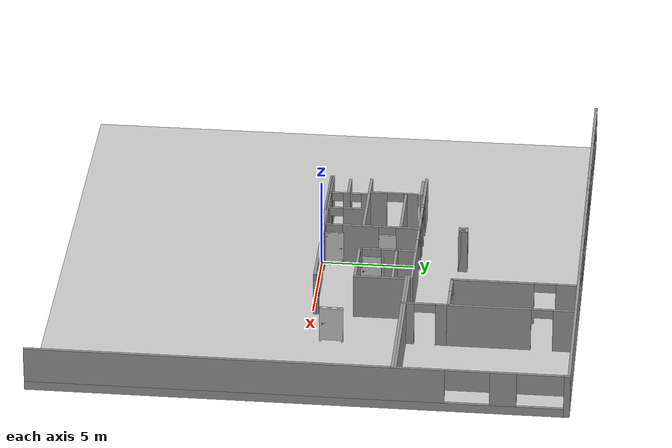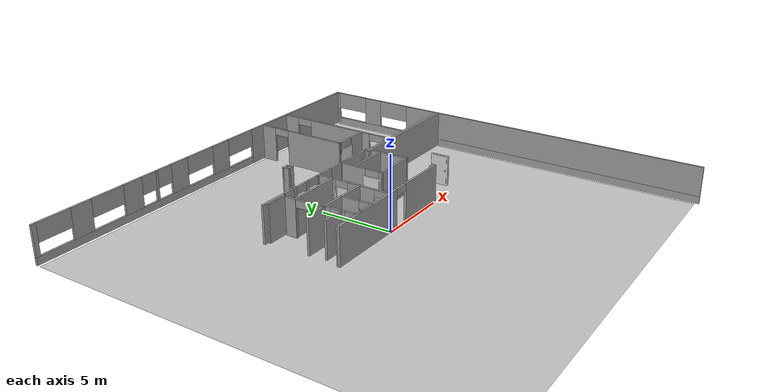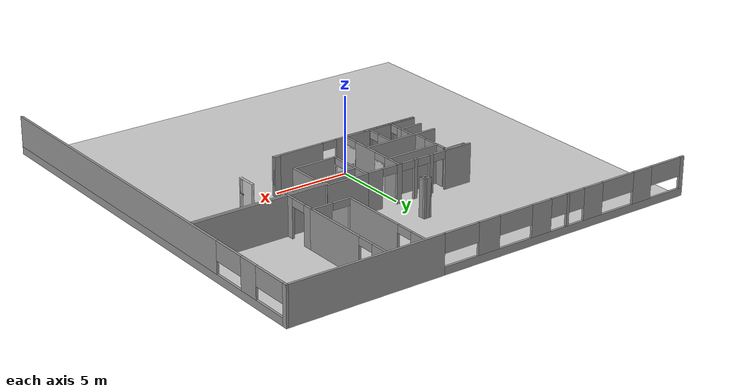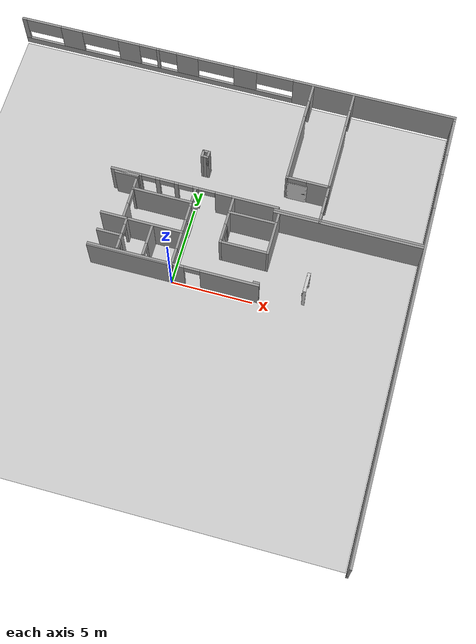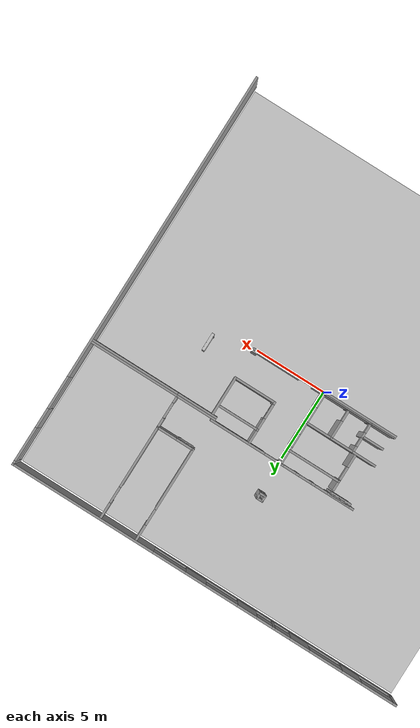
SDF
<sdf version="1.6">
 <world name="default">
  <model name="my_ground_plane">
   <static>1</static>
   <link name="link">
    <collision name="collision">
     <geometry><plane><normal>0 0 1</normal><size>100 100</size></plane></geometry>
     <surface><friction><ode><mu>100</mu><mu2>50</mu2></ode></friction></surface>
    </collision>
    <visual name="visual">
     <cast_shadows>0</cast_shadows>
     <geometry><plane><normal>0 0 1</normal><size>28 28</size></plane></geometry>
     <material>
      <script>
       <uri>model://my_ground_plane/materials/scripts</uri>
       <uri>model://my_ground_plane/materials/textures</uri>
       <name>MyGroundPlane/Image</name>
      </script>
     </material>
    </visual>
   </link>
  </model>
  <model name="basement">
   <link name="Wall_108">
    <pose>2.7255 0.139626 0 0 -0 0</pose>
    <visual name="Wall_108_Visual_0">
     <pose>-2.26972 0 1.25 0 -0 0</pose>
     <geometry><box><size>0.710554 0.15 2.5</size></box></geometry>
     <material>
      <script><uri>file://media/materials/scripts/gazebo.material</uri><name>Gazebo/Grey</name></script>
      <ambient>1 1 1 1</ambient>
     </material>
    </visual>
    <collision name="Wall_108_Collision_0">
     <geometry><box><size>0.710554 0.15 2.5</size></box></geometry>
     <pose>-2.26972 0 1.25 0 -0 0</pose>
    </collision>
    <visual name="Wall_108_Visual_1">
     <pose>0.840079 0 1.25 0 -0 0</pose>
     <geometry><box><size>3.56984 0.15 2.5</size></box></geometry>
     <material>
      <script><uri>file://media/materials/scripts/gazebo.material</uri><name>Gazebo/Grey</name></script>
      <ambient>1 1 1 1</ambient>
     </material>
    </visual>
    <collision name="Wall_108_Collision_1">
     <geometry><box><size>3.56984 0.15 2.5</size></box></geometry>
     <pose>0.840079 0 1.25 0 -0 0</pose>
    </collision>
    <visual name="Wall_108_Visual_2">
     <pose>-1.42964 0 2.25 0 -0 0</pose>
     <geometry><box><size>0.969605 0.15 0.5</size></box></geometry>
     <material>
      <script><uri>file://media/materials/scripts/gazebo.material</uri><name>Gazebo/Grey</name></script>
      <ambient>1 1 1 1</ambient>
     </material>
    </visual>
    <collision name="Wall_108_Collision_2">
     <geometry><box><size>0.969605 0.15 0.5</size></box></geometry>
     <pose>-1.42964 0 2.25 0 -0 0</pose>
    </collision>
   </link>
   <link name="Wall_116">
    <collision name="Wall_116_Collision">
     <geometry><box><size>0.4 0.15 2.5</size></box></geometry>
     <pose>0 0 1.25 0 -0 0</pose>
    </collision>
    <visual name="Wall_116_Visual">
     <pose>0 0 1.25 0 -0 0</pose>
     <geometry><box><size>0.4 0.15 2.5</size></box></geometry>
     <material>
      <script><uri>file://media/materials/scripts/gazebo.material</uri><name>Gazebo/Grey</name></script>
      <ambient>1 1 1 1</ambient>
     </material>
    </visual>
    <pose>5.13257 0.268093 0 0 -0 0</pose>
   </link>
   <link name="Wall_148">
    <collision name="Wall_148_Collision">
     <geometry><box><size>1.5 0.15 2.5</size></box></geometry>
     <pose>0 0 1.25 0 -0 0</pose>
    </collision>
    <visual name="Wall_148_Visual">
     <pose>0 0 1.25 0 -0 0</pose>
     <geometry><box><size>1.5 0.15 2.5</size></box></geometry>
     <material>
      <script><uri>file://media/materials/scripts/gazebo.material</uri><name>Gazebo/Grey</name></script>
      <ambient>1 1 1 1</ambient>
     </material>
    </visual>
    <pose>-4.23612 5.13065 0 0 -0 0</pose>
   </link>
   <link name="Wall_150">
    <collision name="Wall_150_Collision">
     <geometry><box><size>1.5 0.15 2.5</size></box></geometry>
     <pose>0 0 1.25 0 -0 0</pose>
    </collision>
    <visual name="Wall_150_Visual">
     <pose>0 0 1.25 0 -0 0</pose>
     <geometry><box><size>1.5 0.15 2.5</size></box></geometry>
     <material>
      <script><uri>file://media/materials/scripts/gazebo.material</uri><name>Gazebo/Grey</name></script>
      <ambient>1 1 1 1</ambient>
     </material>
    </visual>
    <pose>-4.23669 5.20302 0 0 -0 0</pose>
   </link>
   <link name="Wall_152">
    <collision name="Wall_152_Collision">
     <geometry><box><size>5.25 0.15 2.5</size></box></geometry>
     <pose>0 0 1.25 0 -0 0</pose>
    </collision>
    <visual name="Wall_152_Visual">
     <pose>0 0 1.25 0 -0 0</pose>
     <geometry><box><size>5.25 0.15 2.5</size></box></geometry>
     <material>
      <script><uri>file://media/materials/scripts/gazebo.material</uri><name>Gazebo/Grey</name></script>
      <ambient>1 1 1 1</ambient>
     </material>
    </visual>
    <pose>-2.49774 0.066434 0 0 -0 0</pose>
   </link>
   <link name="Wall_33">
    <pose>-0.0257 5.29795 0 0 -0 0</pose>
    <visual name="Wall_33_Visual_0">
     <pose>-4.2845 0 1.25 0 -0 0</pose>
     <geometry><box><size>1.93101 0.15 2.5</size></box></geometry>
     <material>
      <script><uri>file://media/materials/scripts/gazebo.material</uri><name>Gazebo/Grey</name></script>
      <ambient>1 1 1 1</ambient>
     </material>
    </visual>
    <collision name="Wall_33_Collision_0">
     <geometry><box><size>1.93101 0.15 2.5</size></box></geometry>
     <pose>-4.2845 0 1.25 0 -0 0</pose>
    </collision>
    <visual name="Wall_33_Visual_1">
     <pose>-2.30166 0 1.25 0 -0 0</pose>
     <geometry><box><size>0.26897 0.15 2.5</size></box></geometry>
     <material>
      <script><uri>file://media/materials/scripts/gazebo.material</uri><name>Gazebo/Grey</name></script>
      <ambient>1 1 1 1</ambient>
     </material>
    </visual>
    <collision name="Wall_33_Collision_1">
     <geometry><box><size>0.26897 0.15 2.5</size></box></geometry>
     <pose>-2.30166 0 1.25 0 -0 0</pose>
    </collision>
    <visual name="Wall_33_Visual_2">
     <pose>-1.1397 0 1.25 0 -0 0</pose>
     <geometry><box><size>0.254942 0.15 2.5</size></box></geometry>
     <material>
      <script><uri>file://media/materials/scripts/gazebo.material</uri><name>Gazebo/Grey</name></script>
      <ambient>1 1 1 1</ambient>
     </material>
    </visual>
    <collision name="Wall_33_Collision_2">
     <geometry><box><size>0.254942 0.15 2.5</size></box></geometry>
     <pose>-1.1397 0 1.25 0 -0 0</pose>
    </collision>
    <visual name="Wall_33_Visual_3">
     <pose>0.071064 0 1.25 0 -0 0</pose>
     <geometry><box><size>0.366595 0.15 2.5</size></box></geometry>
     <material>
      <script><uri>file://media/materials/scripts/gazebo.material</uri><name>Gazebo/Grey</name></script>
      <ambient>1 1 1 1</ambient>
     </material>
    </visual>
    <collision name="Wall_33_Collision_3">
     <geometry><box><size>0.366595 0.15 2.5</size></box></geometry>
     <pose>0.071064 0 1.25 0 -0 0</pose>
    </collision>
    <visual name="Wall_33_Visual_4">
     <pose>3.26793 0 1.25 0 -0 0</pose>
     <geometry><box><size>3.96414 0.15 2.5</size></box></geometry>
     <material>
      <script><uri>file://media/materials/scripts/gazebo.material</uri><name>Gazebo/Grey</name></script>
      <ambient>1 1 1 1</ambient>
     </material>
    </visual>
    <collision name="Wall_33_Collision_4">
     <geometry><box><size>3.96414 0.15 2.5</size></box></geometry>
     <pose>3.26793 0 1.25 0 -0 0</pose>
    </collision>
    <visual name="Wall_33_Visual_5">
     <pose>3.78189 0 1.25 0 -0 0</pose>
     <geometry><box><size>2.93622 0.15 2.5</size></box></geometry>
     <material>
      <script><uri>file://media/materials/scripts/gazebo.material</uri><name>Gazebo/Grey</name></script>
      <ambient>1 1 1 1</ambient>
     </material>
    </visual>
    <collision name="Wall_33_Collision_5">
     <geometry><box><size>2.93622 0.15 2.5</size></box></geometry>
     <pose>3.78189 0 1.25 0 -0 0</pose>
    </collision>
    <visual name="Wall_33_Visual_6">
     <pose>-2.87757 0 2.25 0 -0 0</pose>
     <geometry><box><size>0.882847 0.15 0.5</size></box></geometry>
     <material>
      <script><uri>file://media/materials/scripts/gazebo.material</uri><name>Gazebo/Grey</name></script>
      <ambient>1 1 1 1</ambient>
     </material>
    </visual>
    <collision name="Wall_33_Collision_6">
     <geometry><box><size>0.882847 0.15 0.5</size></box></geometry>
     <pose>-2.87757 0 2.25 0 -0 0</pose>
    </collision>
    <visual name="Wall_33_Visual_7">
     <pose>-1.71717 0 2.25 0 -0 0</pose>
     <geometry><box><size>0.9 0.15 0.5</size></box></geometry>
     <material>
      <script><uri>file://media/materials/scripts/gazebo.material</uri><name>Gazebo/Grey</name></script>
      <ambient>1 1 1 1</ambient>
     </material>
    </visual>
    <collision name="Wall_33_Collision_7">
     <geometry><box><size>0.9 0.15 0.5</size></box></geometry>
     <pose>-1.71717 0 2.25 0 -0 0</pose>
    </collision>
    <visual name="Wall_33_Visual_8">
     <pose>-0.562234 0 2.25 0 -0 0</pose>
     <geometry><box><size>0.9 0.15 0.5</size></box></geometry>
     <material>
      <script><uri>file://media/materials/scripts/gazebo.material</uri><name>Gazebo/Grey</name></script>
      <ambient>1 1 1 1</ambient>
     </material>
    </visual>
    <collision name="Wall_33_Collision_8">
     <geometry><box><size>0.9 0.15 0.5</size></box></geometry>
     <pose>-0.562234 0 2.25 0 -0 0</pose>
    </collision>
    <visual name="Wall_33_Visual_9">
     <pose>0.768692 0 2.25 0 -0 0</pose>
     <geometry><box><size>1.02866 0.15 0.5</size></box></geometry>
     <material>
      <script><uri>file://media/materials/scripts/gazebo.material</uri><name>Gazebo/Grey</name></script>
      <ambient>1 1 1 1</ambient>
     </material>
    </visual>
    <collision name="Wall_33_Collision_9">
     <geometry><box><size>1.02866 0.15 0.5</size></box></geometry>
     <pose>0.768692 0 2.25 0 -0 0</pose>
    </collision>
   </link>
   <link name="Wall_35">
    <pose>5.14294 10.7592 0 0 -0 1.5708</pose>
    <visual name="Wall_35_Visual_0">
     <pose>-1.14443 0 1.25 0 -0 0</pose>
     <geometry><box><size>4.46114 0.15 2.5</size></box></geometry>
     <material>
      <script><uri>file://media/materials/scripts/gazebo.material</uri><name>Gazebo/Grey</name></script>
      <ambient>1 1 1 1</ambient>
     </material>
    </visual>
    <collision name="Wall_35_Collision_0">
     <geometry><box><size>4.46114 0.15 2.5</size></box></geometry>
     <pose>-1.14443 0 1.25 0 -0 0</pose>
    </collision>
    <visual name="Wall_35_Visual_1">
     <pose>2.80026 0 1.25 0 -0 0</pose>
     <geometry><box><size>1.14948 0.15 2.5</size></box></geometry>
     <material>
      <script><uri>file://media/materials/scripts/gazebo.material</uri><name>Gazebo/Grey</name></script>
      <ambient>1 1 1 1</ambient>
     </material>
    </visual>
    <collision name="Wall_35_Collision_1">
     <geometry><box><size>1.14948 0.15 2.5</size></box></geometry>
     <pose>2.80026 0 1.25 0 -0 0</pose>
    </collision>
    <visual name="Wall_35_Visual_2">
     <pose>1.65583 0 2.25 0 -0 0</pose>
     <geometry><box><size>1.13938 0.15 0.5</size></box></geometry>
     <material>
      <script><uri>file://media/materials/scripts/gazebo.material</uri><name>Gazebo/Grey</name></script>
      <ambient>1 1 1 1</ambient>
     </material>
    </visual>
    <collision name="Wall_35_Collision_2">
     <geometry><box><size>1.13938 0.15 0.5</size></box></geometry>
     <pose>1.65583 0 2.25 0 -0 0</pose>
    </collision>
   </link>
   <link name="Wall_37">
    <pose>6.43878 7.45698 0 0 0 -0.001748</pose>
    <visual name="Wall_37_Visual_0">
     <pose>-1.29409 0 1.25 0 -0 0</pose>
     <geometry><box><size>0.153496 0.15 2.5</size></box></geometry>
     <material>
      <script><uri>file://media/materials/scripts/gazebo.material</uri><name>Gazebo/Grey</name></script>
      <ambient>1 1 1 1</ambient>
     </material>
    </visual>
    <collision name="Wall_37_Collision_0">
     <geometry><box><size>0.153496 0.15 2.5</size></box></geometry>
     <pose>-1.29409 0 1.25 0 -0 0</pose>
    </collision>
    <visual name="Wall_37_Visual_1">
     <pose>0.650436 0 1.25 0 -0 0</pose>
     <geometry><box><size>1.4408 0.15 2.5</size></box></geometry>
     <material>
      <script><uri>file://media/materials/scripts/gazebo.material</uri><name>Gazebo/Grey</name></script>
      <ambient>1 1 1 1</ambient>
     </material>
    </visual>
    <collision name="Wall_37_Collision_1">
     <geometry><box><size>1.4408 0.15 2.5</size></box></geometry>
     <pose>0.650436 0 1.25 0 -0 0</pose>
    </collision>
    <visual name="Wall_37_Visual_2">
     <pose>-0.643652 0 2.25 0 -0 0</pose>
     <geometry><box><size>1.14738 0.15 0.5</size></box></geometry>
     <material>
      <script><uri>file://media/materials/scripts/gazebo.material</uri><name>Gazebo/Grey</name></script>
      <ambient>1 1 1 1</ambient>
     </material>
    </visual>
    <collision name="Wall_37_Collision_2">
     <geometry><box><size>1.14738 0.15 0.5</size></box></geometry>
     <pose>-0.643652 0 2.25 0 -0 0</pose>
    </collision>
   </link>
   <link name="Wall_38">
    <pose>7.74331 10.7547 0 0 -0 1.5708</pose>
    <visual name="Wall_38_Visual_0">
     <pose>-1.1444 0 1.25 0 -0 0</pose>
     <geometry><box><size>4.4612 0.15 2.5</size></box></geometry>
     <material>
      <script><uri>file://media/materials/scripts/gazebo.material</uri><name>Gazebo/Grey</name></script>
      <ambient>1 1 1 1</ambient>
     </material>
    </visual>
    <collision name="Wall_38_Collision_0">
     <geometry><box><size>4.4612 0.15 2.5</size></box></geometry>
     <pose>-1.1444 0 1.25 0 -0 0</pose>
    </collision>
    <visual name="Wall_38_Visual_1">
     <pose>2.80523 0 1.25 0 -0 0</pose>
     <geometry><box><size>1.13954 0.15 2.5</size></box></geometry>
     <material>
      <script><uri>file://media/materials/scripts/gazebo.material</uri><name>Gazebo/Grey</name></script>
      <ambient>1 1 1 1</ambient>
     </material>
    </visual>
    <collision name="Wall_38_Collision_1">
     <geometry><box><size>1.13954 0.15 2.5</size></box></geometry>
     <pose>2.80523 0 1.25 0 -0 0</pose>
    </collision>
    <visual name="Wall_38_Visual_2">
     <pose>1.66083 0 2.25 0 -0 0</pose>
     <geometry><box><size>1.14927 0.15 0.5</size></box></geometry>
     <material>
      <script><uri>file://media/materials/scripts/gazebo.material</uri><name>Gazebo/Grey</name></script>
      <ambient>1 1 1 1</ambient>
     </material>
    </visual>
    <collision name="Wall_38_Collision_2">
     <geometry><box><size>1.14927 0.15 0.5</size></box></geometry>
     <pose>1.66083 0 2.25 0 -0 0</pose>
    </collision>
   </link>
   <link name="Wall_40">
    <pose>7.74284 6.23253 0 0 -0 1.5708</pose>
    <visual name="Wall_40_Visual_0">
     <pose>-0.91423 0 1.25 0 -0 0</pose>
     <geometry><box><size>0.671541 0.15 2.5</size></box></geometry>
     <material>
      <script><uri>file://media/materials/scripts/gazebo.material</uri><name>Gazebo/Grey</name></script>
      <ambient>1 1 1 1</ambient>
     </material>
    </visual>
    <collision name="Wall_40_Collision_0">
     <geometry><box><size>0.671541 0.15 2.5</size></box></geometry>
     <pose>-0.91423 0 1.25 0 -0 0</pose>
    </collision>
    <visual name="Wall_40_Visual_1">
     <pose>0.897548 0 1.25 0 -0 0</pose>
     <geometry><box><size>0.704904 0.15 2.5</size></box></geometry>
     <material>
      <script><uri>file://media/materials/scripts/gazebo.material</uri><name>Gazebo/Grey</name></script>
      <ambient>1 1 1 1</ambient>
     </material>
    </visual>
    <collision name="Wall_40_Collision_1">
     <geometry><box><size>0.704904 0.15 2.5</size></box></geometry>
     <pose>0.897548 0 1.25 0 -0 0</pose>
    </collision>
    <visual name="Wall_40_Visual_2">
     <pose>1.19765 0 1.25 0 -0 0</pose>
     <geometry><box><size>0.104698 0.15 2.5</size></box></geometry>
     <material>
      <script><uri>file://media/materials/scripts/gazebo.material</uri><name>Gazebo/Grey</name></script>
      <ambient>1 1 1 1</ambient>
     </material>
    </visual>
    <collision name="Wall_40_Collision_2">
     <geometry><box><size>0.104698 0.15 2.5</size></box></geometry>
     <pose>1.19765 0 1.25 0 -0 0</pose>
    </collision>
    <visual name="Wall_40_Visual_3">
     <pose>-0.022457 0 2.25 0 -0 0</pose>
     <geometry><box><size>1.11201 0.15 0.5</size></box></geometry>
     <material>
      <script><uri>file://media/materials/scripts/gazebo.material</uri><name>Gazebo/Grey</name></script>
      <ambient>1 1 1 1</ambient>
     </material>
    </visual>
    <collision name="Wall_40_Collision_3">
     <geometry><box><size>1.11201 0.15 0.5</size></box></geometry>
     <pose>-0.022457 0 2.25 0 -0 0</pose>
    </collision>
   </link>
   <link name="Wall_42">
    <collision name="Wall_42_Collision">
     <geometry><box><size>0.5 0.15 2.5</size></box></geometry>
     <pose>0 0 1.25 0 -0 0</pose>
    </collision>
    <visual name="Wall_42_Visual">
     <pose>0 0 1.25 0 -0 0</pose>
     <geometry><box><size>0.5 0.15 2.5</size></box></geometry>
     <material>
      <script><uri>file://media/materials/scripts/gazebo.material</uri><name>Gazebo/Grey</name></script>
      <ambient>1 1 1 1</ambient>
     </material>
    </visual>
    <pose>-0.191022 7.69282 0 0 0 -1.5708</pose>
   </link>
   <link name="Wall_43">
    <collision name="Wall_43_Collision">
     <geometry><box><size>0.5 0.15 2.5</size></box></geometry>
     <pose>0 0 1.25 0 -0 0</pose>
    </collision>
    <visual name="Wall_43_Visual">
     <pose>0 0 1.25 0 -0 0</pose>
     <geometry><box><size>0.5 0.15 2.5</size></box></geometry>
     <material>
      <script><uri>file://media/materials/scripts/gazebo.material</uri><name>Gazebo/Grey</name></script>
      <ambient>1 1 1 1</ambient>
     </material>
    </visual>
    <pose>-0.016022 7.51782 0 0 -0 0</pose>
   </link>
   <link name="Wall_44">
    <collision name="Wall_44_Collision">
     <geometry><box><size>0.5 0.15 2.5</size></box></geometry>
     <pose>0 0 1.25 0 -0 0</pose>
    </collision>
    <visual name="Wall_44_Visual">
     <pose>0 0 1.25 0 -0 0</pose>
     <geometry><box><size>0.5 0.15 2.5</size></box></geometry>
     <material>
      <script><uri>file://media/materials/scripts/gazebo.material</uri><name>Gazebo/Grey</name></script>
      <ambient>1 1 1 1</ambient>
     </material>
    </visual>
    <pose>0.158978 7.69282 0 0 -0 1.5708</pose>
   </link>
   <link name="Wall_45">
    <collision name="Wall_45_Collision">
     <geometry><box><size>0.5 0.15 2.5</size></box></geometry>
     <pose>0 0 1.25 0 -0 0</pose>
    </collision>
    <visual name="Wall_45_Visual">
     <pose>0 0 1.25 0 -0 0</pose>
     <geometry><box><size>0.5 0.15 2.5</size></box></geometry>
     <material>
      <script><uri>file://media/materials/scripts/gazebo.material</uri><name>Gazebo/Grey</name></script>
      <ambient>1 1 1 1</ambient>
     </material>
    </visual>
    <pose>-0.016022 7.86782 0 0 -0 3.14159</pose>
   </link>
   <link name="Wall_49">
    <collision name="Wall_49_Collision">
     <geometry><box><size>5.10941 0.15 2.5</size></box></geometry>
     <pose>0 0 1.25 0 -0 0</pose>
    </collision>
    <visual name="Wall_49_Visual">
     <pose>0 0 1.25 0 -0 0</pose>
     <geometry><box><size>5.10941 0.15 2.5</size></box></geometry>
     <material>
      <script><uri>file://media/materials/scripts/gazebo.material</uri><name>Gazebo/Grey</name></script>
      <ambient>1 1 1 1</ambient>
     </material>
    </visual>
    <pose>-2.43353 2.27623 0 0 -0 3.13785</pose>
   </link>
   <link name="Wall_5">
    <pose>14.1254 0.001224 0 0 0 -1.5708</pose>
    <visual name="Wall_5_Visual_0">
     <pose>-14.0869 0 1.25 0 -0 0</pose>
     <geometry><box><size>0.326197 0.15 2.5</size></box></geometry>
     <material>
      <script><uri>file://media/materials/scripts/gazebo.material</uri><name>Gazebo/Grey</name></script>
      <ambient>1 1 1 1</ambient>
     </material>
    </visual>
    <collision name="Wall_5_Collision_0">
     <geometry><box><size>0.326197 0.15 2.5</size></box></geometry>
     <pose>-14.0869 0 1.25 0 -0 0</pose>
    </collision>
    <visual name="Wall_5_Visual_1">
     <pose>0.163098 0 0.25 0 -0 0</pose>
     <geometry><box><size>28.1738 0.15 0.5</size></box></geometry>
     <material>
      <script><uri>file://media/materials/scripts/gazebo.material</uri><name>Gazebo/Grey</name></script>
      <ambient>1 1 1 1</ambient>
     </material>
    </visual>
    <collision name="Wall_5_Collision_1">
     <geometry><box><size>28.1738 0.15 0.5</size></box></geometry>
     <pose>0.163098 0 0.25 0 -0 0</pose>
    </collision>
    <visual name="Wall_5_Visual_2">
     <pose>-10.7815 0 1.5 0 -0 0</pose>
     <geometry><box><size>1.40279 0.15 2</size></box></geometry>
     <material>
      <script><uri>file://media/materials/scripts/gazebo.material</uri><name>Gazebo/Grey</name></script>
      <ambient>1 1 1 1</ambient>
     </material>
    </visual>
    <collision name="Wall_5_Collision_2">
     <geometry><box><size>1.40279 0.15 2</size></box></geometry>
     <pose>-10.7815 0 1.5 0 -0 0</pose>
    </collision>
    <visual name="Wall_5_Visual_3">
     <pose>3.25452 0 1.5 0 -0 0</pose>
     <geometry><box><size>21.991 0.15 2</size></box></geometry>
     <material>
      <script><uri>file://media/materials/scripts/gazebo.material</uri><name>Gazebo/Grey</name></script>
      <ambient>1 1 1 1</ambient>
     </material>
    </visual>
    <collision name="Wall_5_Collision_3">
     <geometry><box><size>21.991 0.15 2</size></box></geometry>
     <pose>3.25452 0 1.5 0 -0 0</pose>
    </collision>
    <visual name="Wall_5_Visual_4">
     <pose>-12.7033 0 1.9 0 -0 0</pose>
     <geometry><box><size>2.44093 0.15 1.2</size></box></geometry>
     <material>
      <script><uri>file://media/materials/scripts/gazebo.material</uri><name>Gazebo/Grey</name></script>
      <ambient>1 1 1 1</ambient>
     </material>
    </visual>
    <collision name="Wall_5_Collision_4">
     <geometry><box><size>2.44093 0.15 1.2</size></box></geometry>
     <pose>-12.7033 0 1.9 0 -0 0</pose>
    </collision>
    <visual name="Wall_5_Visual_5">
     <pose>-8.91052 0 1.9 0 -0 0</pose>
     <geometry><box><size>2.33913 0.15 1.2</size></box></geometry>
     <material>
      <script><uri>file://media/materials/scripts/gazebo.material</uri><name>Gazebo/Grey</name></script>
      <ambient>1 1 1 1</ambient>
     </material>
    </visual>
    <collision name="Wall_5_Collision_5">
     <geometry><box><size>2.33913 0.15 1.2</size></box></geometry>
     <pose>-8.91052 0 1.9 0 -0 0</pose>
    </collision>
   </link>
   <link name="Wall_51">
    <pose>0.057254 2.74787 0 0 0 -1.5708</pose>
    <visual name="Wall_51_Visual_0">
     <pose>-1.95726 0 1.25 0 -0 0</pose>
     <geometry><box><size>1.33549 0.15 2.5</size></box></geometry>
     <material>
      <script><uri>file://media/materials/scripts/gazebo.material</uri><name>Gazebo/Grey</name></script>
      <ambient>1 1 1 1</ambient>
     </material>
    </visual>
    <collision name="Wall_51_Collision_0">
     <geometry><box><size>1.33549 0.15 2.5</size></box></geometry>
     <pose>-1.95726 0 1.25 0 -0 0</pose>
    </collision>
    <visual name="Wall_51_Visual_1">
     <pose>0.62213 0 1.25 0 -0 0</pose>
     <geometry><box><size>1.94767 0.15 2.5</size></box></geometry>
     <material>
      <script><uri>file://media/materials/scripts/gazebo.material</uri><name>Gazebo/Grey</name></script>
      <ambient>1 1 1 1</ambient>
     </material>
    </visual>
    <collision name="Wall_51_Collision_1">
     <geometry><box><size>1.94767 0.15 2.5</size></box></geometry>
     <pose>0.62213 0 1.25 0 -0 0</pose>
    </collision>
    <visual name="Wall_51_Visual_2">
     <pose>2.56048 0 1.25 0 -0 0</pose>
     <geometry><box><size>0.129033 0.15 2.5</size></box></geometry>
     <material>
      <script><uri>file://media/materials/scripts/gazebo.material</uri><name>Gazebo/Grey</name></script>
      <ambient>1 1 1 1</ambient>
     </material>
    </visual>
    <collision name="Wall_51_Collision_2">
     <geometry><box><size>0.129033 0.15 2.5</size></box></geometry>
     <pose>2.56048 0 1.25 0 -0 0</pose>
    </collision>
    <visual name="Wall_51_Visual_3">
     <pose>-0.82061 0 2.25 0 -0 0</pose>
     <geometry><box><size>0.937807 0.15 0.5</size></box></geometry>
     <material>
      <script><uri>file://media/materials/scripts/gazebo.material</uri><name>Gazebo/Grey</name></script>
      <ambient>1 1 1 1</ambient>
     </material>
    </visual>
    <collision name="Wall_51_Collision_3">
     <geometry><box><size>0.937807 0.15 0.5</size></box></geometry>
     <pose>-0.82061 0 2.25 0 -0 0</pose>
    </collision>
    <visual name="Wall_51_Visual_4">
     <pose>2.04597 0 2.25 0 -0 0</pose>
     <geometry><box><size>0.9 0.15 0.5</size></box></geometry>
     <material>
      <script><uri>file://media/materials/scripts/gazebo.material</uri><name>Gazebo/Grey</name></script>
      <ambient>1 1 1 1</ambient>
     </material>
    </visual>
    <collision name="Wall_51_Collision_4">
     <geometry><box><size>0.9 0.15 0.5</size></box></geometry>
     <pose>2.04597 0 2.25 0 -0 0</pose>
    </collision>
   </link>
   <link name="Wall_53">
    <collision name="Wall_53_Collision">
     <geometry><box><size>3.75 0.15 2.5</size></box></geometry>
     <pose>0 0 1.25 0 -0 0</pose>
    </collision>
    <visual name="Wall_53_Visual">
     <pose>0 0 1.25 0 -0 0</pose>
     <geometry><box><size>3.75 0.15 2.5</size></box></geometry>
     <material>
      <script><uri>file://media/materials/scripts/gazebo.material</uri><name>Gazebo/Grey</name></script>
      <ambient>1 1 1 1</ambient>
     </material>
    </visual>
    <pose>-1.76423 4.29808 0 0 -0 0</pose>
   </link>
   <link name="Wall_55">
    <collision name="Wall_55_Collision">
     <geometry><box><size>0.75 0.15 2.5</size></box></geometry>
     <pose>0 0 1.25 0 -0 0</pose>
    </collision>
    <visual name="Wall_55_Visual">
     <pose>0 0 1.25 0 -0 0</pose>
     <geometry><box><size>0.75 0.15 2.5</size></box></geometry>
     <material>
      <script><uri>file://media/materials/scripts/gazebo.material</uri><name>Gazebo/Grey</name></script>
      <ambient>1 1 1 1</ambient>
     </material>
    </visual>
    <pose>-3.56641 4.59591 0 0 0 -1.5708</pose>
   </link>
   <link name="Wall_59">
    <pose>-3.56584 3.2285 0 0 -0 1.5708</pose>
    <visual name="Wall_59_Visual_0">
     <pose>-0.488849 0 1.25 0 -0 0</pose>
     <geometry><box><size>1.0223 0.15 2.5</size></box></geometry>
     <material>
      <script><uri>file://media/materials/scripts/gazebo.material</uri><name>Gazebo/Grey</name></script>
      <ambient>1 1 1 1</ambient>
     </material>
    </visual>
    <collision name="Wall_59_Collision_0">
     <geometry><box><size>1.0223 0.15 2.5</size></box></geometry>
     <pose>-0.488849 0 1.25 0 -0 0</pose>
    </collision>
    <visual name="Wall_59_Visual_1">
     <pose>0.972494 0 1.25 0 -0 0</pose>
     <geometry><box><size>0.055013 0.15 2.5</size></box></geometry>
     <material>
      <script><uri>file://media/materials/scripts/gazebo.material</uri><name>Gazebo/Grey</name></script>
      <ambient>1 1 1 1</ambient>
     </material>
    </visual>
    <collision name="Wall_59_Collision_1">
     <geometry><box><size>0.055013 0.15 2.5</size></box></geometry>
     <pose>0.972494 0 1.25 0 -0 0</pose>
    </collision>
    <visual name="Wall_59_Visual_2">
     <pose>0.483645 0 2.25 0 -0 0</pose>
     <geometry><box><size>0.922684 0.15 0.5</size></box></geometry>
     <material>
      <script><uri>file://media/materials/scripts/gazebo.material</uri><name>Gazebo/Grey</name></script>
      <ambient>1 1 1 1</ambient>
     </material>
    </visual>
    <collision name="Wall_59_Collision_2">
     <geometry><box><size>0.922684 0.15 0.5</size></box></geometry>
     <pose>0.483645 0 2.25 0 -0 0</pose>
    </collision>
   </link>
   <link name="Wall_63">
    <collision name="Wall_63_Collision">
     <geometry><box><size>5.25 0.15 2.5</size></box></geometry>
     <pose>0 0 1.25 0 -0 0</pose>
    </collision>
    <visual name="Wall_63_Visual">
     <pose>0 0 1.25 0 -0 0</pose>
     <geometry><box><size>5.25 0.15 2.5</size></box></geometry>
     <material>
      <script><uri>file://media/materials/scripts/gazebo.material</uri><name>Gazebo/Grey</name></script>
      <ambient>1 1 1 1</ambient>
     </material>
    </visual>
    <pose>-2.49367 0.144889 0 0 -0 0</pose>
   </link>
   <link name="Wall_65">
    <pose>-1.74088 1.21415 0 0 -0 1.5708</pose>
    <visual name="Wall_65_Visual_0">
     <pose>-1.03933 0 1.25 0 -0 0</pose>
     <geometry><box><size>0.171333 0.15 2.5</size></box></geometry>
     <material>
      <script><uri>file://media/materials/scripts/gazebo.material</uri><name>Gazebo/Grey</name></script>
      <ambient>1 1 1 1</ambient>
     </material>
    </visual>
    <collision name="Wall_65_Collision_0">
     <geometry><box><size>0.171333 0.15 2.5</size></box></geometry>
     <pose>-1.03933 0 1.25 0 -0 0</pose>
    </collision>
    <visual name="Wall_65_Visual_1">
     <pose>0.461338 0 1.25 0 -0 0</pose>
     <geometry><box><size>1.32732 0.15 2.5</size></box></geometry>
     <material>
      <script><uri>file://media/materials/scripts/gazebo.material</uri><name>Gazebo/Grey</name></script>
      <ambient>1 1 1 1</ambient>
     </material>
    </visual>
    <collision name="Wall_65_Collision_1">
     <geometry><box><size>1.32732 0.15 2.5</size></box></geometry>
     <pose>0.461338 0 1.25 0 -0 0</pose>
    </collision>
    <visual name="Wall_65_Visual_2">
     <pose>-0.577995 0 2.25 0 -0 0</pose>
     <geometry><box><size>0.751344 0.15 0.5</size></box></geometry>
     <material>
      <script><uri>file://media/materials/scripts/gazebo.material</uri><name>Gazebo/Grey</name></script>
      <ambient>1 1 1 1</ambient>
     </material>
    </visual>
    <collision name="Wall_65_Collision_2">
     <geometry><box><size>0.751344 0.15 0.5</size></box></geometry>
     <pose>-0.577995 0 2.25 0 -0 0</pose>
    </collision>
   </link>
   <link name="Wall_67">
    <pose>-3.33938 1.20265 0 0 -0 1.5708</pose>
    <visual name="Wall_67_Visual_0">
     <pose>-1.03247 0 1.25 0 -0 0</pose>
     <geometry><box><size>0.185068 0.15 2.5</size></box></geometry>
     <material>
      <script><uri>file://media/materials/scripts/gazebo.material</uri><name>Gazebo/Grey</name></script>
      <ambient>1 1 1 1</ambient>
     </material>
    </visual>
    <collision name="Wall_67_Collision_0">
     <geometry><box><size>0.185068 0.15 2.5</size></box></geometry>
     <pose>-1.03247 0 1.25 0 -0 0</pose>
    </collision>
    <visual name="Wall_67_Visual_1">
     <pose>-0.143595 0 1.25 0 -0 0</pose>
     <geometry><box><size>0.386655 0.15 2.5</size></box></geometry>
     <material>
      <script><uri>file://media/materials/scripts/gazebo.material</uri><name>Gazebo/Grey</name></script>
      <ambient>1 1 1 1</ambient>
     </material>
    </visual>
    <collision name="Wall_67_Collision_1">
     <geometry><box><size>0.386655 0.15 2.5</size></box></geometry>
     <pose>-0.143595 0 1.25 0 -0 0</pose>
    </collision>
    <visual name="Wall_67_Visual_2">
     <pose>0.892631 0 1.25 0 -0 0</pose>
     <geometry><box><size>0.464739 0.15 2.5</size></box></geometry>
     <material>
      <script><uri>file://media/materials/scripts/gazebo.material</uri><name>Gazebo/Grey</name></script>
      <ambient>1 1 1 1</ambient>
     </material>
    </visual>
    <collision name="Wall_67_Collision_2">
     <geometry><box><size>0.464739 0.15 2.5</size></box></geometry>
     <pose>0.892631 0 1.25 0 -0 0</pose>
    </collision>
    <visual name="Wall_67_Visual_3">
     <pose>-0.638427 0 2.25 0 -0 0</pose>
     <geometry><box><size>0.60301 0.15 0.5</size></box></geometry>
     <material>
      <script><uri>file://media/materials/scripts/gazebo.material</uri><name>Gazebo/Grey</name></script>
      <ambient>1 1 1 1</ambient>
     </material>
    </visual>
    <collision name="Wall_67_Collision_3">
     <geometry><box><size>0.60301 0.15 0.5</size></box></geometry>
     <pose>-0.638427 0 2.25 0 -0 0</pose>
    </collision>
    <visual name="Wall_67_Visual_4">
     <pose>0.354997 0 2.25 0 -0 0</pose>
     <geometry><box><size>0.610528 0.15 0.5</size></box></geometry>
     <material>
      <script><uri>file://media/materials/scripts/gazebo.material</uri><name>Gazebo/Grey</name></script>
      <ambient>1 1 1 1</ambient>
     </material>
    </visual>
    <collision name="Wall_67_Collision_4">
     <geometry><box><size>0.610528 0.15 0.5</size></box></geometry>
     <pose>0.354997 0 2.25 0 -0 0</pose>
    </collision>
   </link>
   <link name="Wall_69">
    <collision name="Wall_69_Collision">
     <geometry><box><size>1.5 0.15 2.5</size></box></geometry>
     <pose>0 0 1.25 0 -0 0</pose>
    </collision>
    <visual name="Wall_69_Visual">
     <pose>0 0 1.25 0 -0 0</pose>
     <geometry><box><size>1.5 0.15 2.5</size></box></geometry>
     <material>
      <script><uri>file://media/materials/scripts/gazebo.material</uri><name>Gazebo/Grey</name></script>
      <ambient>1 1 1 1</ambient>
     </material>
    </visual>
    <pose>-4.10188 1.14165 0 0 -0 0</pose>
   </link>
   <link name="Wall_7">
    <pose>0.075421 14.1762 0 0 -0 3.14159</pose>
    <visual name="Wall_7_Visual_0">
     <pose>-8.94916 0 1.25 0 -0 0</pose>
     <geometry><box><size>10.3517 0.15 2.5</size></box></geometry>
     <material>
      <script><uri>file://media/materials/scripts/gazebo.material</uri><name>Gazebo/Grey</name></script>
      <ambient>1 1 1 1</ambient>
     </material>
    </visual>
    <collision name="Wall_7_Collision_0">
     <geometry><box><size>10.3517 0.15 2.5</size></box></geometry>
     <pose>-8.94916 0 1.25 0 -0 0</pose>
    </collision>
    <visual name="Wall_7_Visual_1">
     <pose>5.17584 0 0.25 0 -0 0</pose>
     <geometry><box><size>17.8983 0.15 0.5</size></box></geometry>
     <material>
      <script><uri>file://media/materials/scripts/gazebo.material</uri><name>Gazebo/Grey</name></script>
      <ambient>1 1 1 1</ambient>
     </material>
    </visual>
    <collision name="Wall_7_Collision_1">
     <geometry><box><size>17.8983 0.15 0.5</size></box></geometry>
     <pose>5.17584 0 0.25 0 -0 0</pose>
    </collision>
    <visual name="Wall_7_Visual_2">
     <pose>-0.655938 0 1.5 0 -0 0</pose>
     <geometry><box><size>1.50435 0.15 2</size></box></geometry>
     <material>
      <script><uri>file://media/materials/scripts/gazebo.material</uri><name>Gazebo/Grey</name></script>
      <ambient>1 1 1 1</ambient>
     </material>
    </visual>
    <collision name="Wall_7_Collision_2">
     <geometry><box><size>1.50435 0.15 2</size></box></geometry>
     <pose>-0.655938 0 1.5 0 -0 0</pose>
    </collision>
    <visual name="Wall_7_Visual_3">
     <pose>3.13367 0 1.5 0 -0 0</pose>
     <geometry><box><size>1.414 0.15 2</size></box></geometry>
     <material>
      <script><uri>file://media/materials/scripts/gazebo.material</uri><name>Gazebo/Grey</name></script>
      <ambient>1 1 1 1</ambient>
     </material>
    </visual>
    <collision name="Wall_7_Collision_3">
     <geometry><box><size>1.414 0.15 2</size></box></geometry>
     <pose>3.13367 0 1.5 0 -0 0</pose>
    </collision>
    <visual name="Wall_7_Visual_4">
     <pose>5.07313 0 1.5 0 -0 0</pose>
     <geometry><box><size>0.188237 0.15 2</size></box></geometry>
     <material>
      <script><uri>file://media/materials/scripts/gazebo.material</uri><name>Gazebo/Grey</name></script>
      <ambient>1 1 1 1</ambient>
     </material>
    </visual>
    <collision name="Wall_7_Collision_4">
     <geometry><box><size>0.188237 0.15 2</size></box></geometry>
     <pose>5.07313 0 1.5 0 -0 0</pose>
    </collision>
    <visual name="Wall_7_Visual_5">
     <pose>6.99754 0 1.5 0 -0 0</pose>
     <geometry><box><size>1.41729 0.15 2</size></box></geometry>
     <material>
      <script><uri>file://media/materials/scripts/gazebo.material</uri><name>Gazebo/Grey</name></script>
      <ambient>1 1 1 1</ambient>
     </material>
    </visual>
    <collision name="Wall_7_Collision_5">
     <geometry><box><size>1.41729 0.15 2</size></box></geometry>
     <pose>6.99754 0 1.5 0 -0 0</pose>
    </collision>
    <visual name="Wall_7_Visual_6">
     <pose>10.8099 0 1.5 0 -0 0</pose>
     <geometry><box><size>1.43338 0.15 2</size></box></geometry>
     <material>
      <script><uri>file://media/materials/scripts/gazebo.material</uri><name>Gazebo/Grey</name></script>
      <ambient>1 1 1 1</ambient>
     </material>
    </visual>
    <collision name="Wall_7_Collision_6">
     <geometry><box><size>1.43338 0.15 2</size></box></geometry>
     <pose>10.8099 0 1.5 0 -0 0</pose>
    </collision>
    <visual name="Wall_7_Visual_7">
     <pose>13.9751 0 1.5 0 -0 0</pose>
     <geometry><box><size>0.299735 0.15 2</size></box></geometry>
     <material>
      <script><uri>file://media/materials/scripts/gazebo.material</uri><name>Gazebo/Grey</name></script>
      <ambient>1 1 1 1</ambient>
     </material>
    </visual>
    <collision name="Wall_7_Collision_7">
     <geometry><box><size>0.299735 0.15 2</size></box></geometry>
     <pose>13.9751 0 1.5 0 -0 0</pose>
    </collision>
    <visual name="Wall_7_Visual_8">
     <pose>-2.59072 0 1.9 0 -0 0</pose>
     <geometry><box><size>2.36522 0.15 1.2</size></box></geometry>
     <material>
      <script><uri>file://media/materials/scripts/gazebo.material</uri><name>Gazebo/Grey</name></script>
      <ambient>1 1 1 1</ambient>
     </material>
    </visual>
    <collision name="Wall_7_Collision_8">
     <geometry><box><size>2.36522 0.15 1.2</size></box></geometry>
     <pose>-2.59072 0 1.9 0 -0 0</pose>
    </collision>
    <visual name="Wall_7_Visual_9">
     <pose>1.26145 0 1.9 0 -0 0</pose>
     <geometry><box><size>2.33044 0.15 1.2</size></box></geometry>
     <material>
      <script><uri>file://media/materials/scripts/gazebo.material</uri><name>Gazebo/Grey</name></script>
      <ambient>1 1 1 1</ambient>
     </material>
    </visual>
    <collision name="Wall_7_Collision_9">
     <geometry><box><size>2.33044 0.15 1.2</size></box></geometry>
     <pose>1.26145 0 1.9 0 -0 0</pose>
    </collision>
    <visual name="Wall_7_Visual_10">
     <pose>4.40984 0 1.9 0 -0 0</pose>
     <geometry><box><size>1.13834 0.15 1.2</size></box></geometry>
     <material>
      <script><uri>file://media/materials/scripts/gazebo.material</uri><name>Gazebo/Grey</name></script>
      <ambient>1 1 1 1</ambient>
     </material>
    </visual>
    <collision name="Wall_7_Collision_10">
     <geometry><box><size>1.13834 0.15 1.2</size></box></geometry>
     <pose>4.40984 0 1.9 0 -0 0</pose>
    </collision>
    <visual name="Wall_7_Visual_11">
     <pose>5.72807 0 1.9 0 -0 0</pose>
     <geometry><box><size>1.12165 0.15 1.2</size></box></geometry>
     <material>
      <script><uri>file://media/materials/scripts/gazebo.material</uri><name>Gazebo/Grey</name></script>
      <ambient>1 1 1 1</ambient>
     </material>
    </visual>
    <collision name="Wall_7_Collision_11">
     <geometry><box><size>1.12165 0.15 1.2</size></box></geometry>
     <pose>5.72807 0 1.9 0 -0 0</pose>
    </collision>
    <visual name="Wall_7_Visual_12">
     <pose>8.89969 0 1.9 0 -0 0</pose>
     <geometry><box><size>2.387 0.15 1.2</size></box></geometry>
     <material>
      <script><uri>file://media/materials/scripts/gazebo.material</uri><name>Gazebo/Grey</name></script>
      <ambient>1 1 1 1</ambient>
     </material>
    </visual>
    <collision name="Wall_7_Collision_12">
     <geometry><box><size>2.387 0.15 1.2</size></box></geometry>
     <pose>8.89969 0 1.9 0 -0 0</pose>
    </collision>
    <visual name="Wall_7_Visual_13">
     <pose>12.6759 0 1.9 0 -0 0</pose>
     <geometry><box><size>2.29869 0.15 1.2</size></box></geometry>
     <material>
      <script><uri>file://media/materials/scripts/gazebo.material</uri><name>Gazebo/Grey</name></script>
      <ambient>1 1 1 1</ambient>
     </material>
    </visual>
    <collision name="Wall_7_Collision_13">
     <geometry><box><size>2.29869 0.15 1.2</size></box></geometry>
     <pose>12.6759 0 1.9 0 -0 0</pose>
    </collision>
   </link>
   <link name="Wall_72">
    <collision name="Wall_72_Collision">
     <geometry><box><size>9.25 0.15 2.5</size></box></geometry>
     <pose>0 0 1.25 0 -0 0</pose>
    </collision>
    <visual name="Wall_72_Visual">
     <pose>0 0 1.25 0 -0 0</pose>
     <geometry><box><size>9.25 0.15 2.5</size></box></geometry>
     <material>
      <script><uri>file://media/materials/scripts/gazebo.material</uri><name>Gazebo/Grey</name></script>
      <ambient>1 1 1 1</ambient>
     </material>
    </visual>
    <pose>9.56173 5.1543 0 0 -0 0</pose>
   </link>
   <link name="Wall_87">
    <collision name="Wall_87_Collision">
     <geometry><box><size>2.75 0.15 2.5</size></box></geometry>
     <pose>0 0 1.25 0 -0 0</pose>
    </collision>
    <visual name="Wall_87_Visual">
     <pose>0 0 1.25 0 -0 0</pose>
     <geometry><box><size>2.75 0.15 2.5</size></box></geometry>
     <material>
      <script><uri>file://media/materials/scripts/gazebo.material</uri><name>Gazebo/Grey</name></script>
      <ambient>1 1 1 1</ambient>
     </material>
    </visual>
    <pose>3.85972 2.27204 0 0 -0 3.14159</pose>
   </link>
   <link name="Wall_89">
    <collision name="Wall_89_Collision">
     <geometry><box><size>2.75 0.15 2.5</size></box></geometry>
     <pose>0 0 1.25 0 -0 0</pose>
    </collision>
    <visual name="Wall_89_Visual">
     <pose>0 0 1.25 0 -0 0</pose>
     <geometry><box><size>2.75 0.15 2.5</size></box></geometry>
     <material>
      <script><uri>file://media/materials/scripts/gazebo.material</uri><name>Gazebo/Grey</name></script>
      <ambient>1 1 1 1</ambient>
     </material>
    </visual>
    <pose>5.29065 3.57332 0 0 0 -1.5708</pose>
   </link>
   <link name="Wall_92">
    <collision name="Wall_92_Collision">
     <geometry><box><size>9.25 0.15 2.5</size></box></geometry>
     <pose>0 0 1.25 0 -0 0</pose>
    </collision>
    <visual name="Wall_92_Visual">
     <pose>0 0 1.25 0 -0 0</pose>
     <geometry><box><size>9.25 0.15 2.5</size></box></geometry>
     <material>
      <script><uri>file://media/materials/scripts/gazebo.material</uri><name>Gazebo/Grey</name></script>
      <ambient>1 1 1 1</ambient>
     </material>
    </visual>
    <pose>9.55987 5.01359 0 0 -0 0</pose>
   </link>
   <link name="Wall_94">
    <pose>2.41363 3.74686 0 0 -0 1.5708</pose>
    <visual name="Wall_94_Visual_0">
     <pose>-1.44282 0 1.25 0 -0 0</pose>
     <geometry><box><size>0.214361 0.15 2.5</size></box></geometry>
     <material>
      <script><uri>file://media/materials/scripts/gazebo.material</uri><name>Gazebo/Grey</name></script>
      <ambient>1 1 1 1</ambient>
     </material>
    </visual>
    <collision name="Wall_94_Collision_0">
     <geometry><box><size>0.214361 0.15 2.5</size></box></geometry>
     <pose>-1.44282 0 1.25 0 -0 0</pose>
    </collision>
    <visual name="Wall_94_Visual_1">
     <pose>0.624467 0 1.25 0 -0 0</pose>
     <geometry><box><size>1.85107 0.15 2.5</size></box></geometry>
     <material>
      <script><uri>file://media/materials/scripts/gazebo.material</uri><name>Gazebo/Grey</name></script>
      <ambient>1 1 1 1</ambient>
     </material>
    </visual>
    <collision name="Wall_94_Collision_1">
     <geometry><box><size>1.85107 0.15 2.5</size></box></geometry>
     <pose>0.624467 0 1.25 0 -0 0</pose>
    </collision>
    <visual name="Wall_94_Visual_2">
     <pose>-0.818353 0 2.25 0 -0 0</pose>
     <geometry><box><size>1.03457 0.15 0.5</size></box></geometry>
     <material>
      <script><uri>file://media/materials/scripts/gazebo.material</uri><name>Gazebo/Grey</name></script>
      <ambient>1 1 1 1</ambient>
     </material>
    </visual>
    <collision name="Wall_94_Collision_2">
     <geometry><box><size>1.03457 0.15 0.5</size></box></geometry>
     <pose>-0.818353 0 2.25 0 -0 0</pose>
    </collision>
   </link>
   <link name="Wall_96">
    <collision name="Wall_96_Collision">
     <geometry><box><size>3 0.15 2.5</size></box></geometry>
     <pose>0 0 1.25 0 -0 0</pose>
    </collision>
    <visual name="Wall_96_Visual">
     <pose>0 0 1.25 0 -0 0</pose>
     <geometry><box><size>3 0.15 2.5</size></box></geometry>
     <material>
      <script><uri>file://media/materials/scripts/gazebo.material</uri><name>Gazebo/Grey</name></script>
      <ambient>1 1 1 1</ambient>
     </material>
    </visual>
    <pose>3.85593 4.2792 0 0 -0 0</pose>
   </link>
   <static>1</static>
  </model>
  <model name="doorxl_7">
   <link name="link">
    <visual name="visual">
     <geometry><mesh><uri>model://doorxl/meshes/doorxl.dae</uri><scale>1 1 1</scale></mesh></geometry>
    </visual>
    <collision name="collision">
     <geometry><mesh><uri>model://doorxl/meshes/doorxl.dae</uri><scale>1 1 1</scale></mesh></geometry>
    </collision>
   </link>
   <static>1</static>
   <pose>5.77645 7.45841 0 0 -0 0</pose>
  </model>
  <model name="door_6">
   <link name="link">
    <visual name="visual">
     <geometry><mesh><uri>model://door/meshes/door.dae</uri><scale>1 1 1</scale></mesh></geometry>
    </visual>
    <collision name="collision">
     <geometry><mesh><uri>model://door/meshes/door.dae</uri><scale>1 1 1</scale></mesh></geometry>
    </collision>
   </link>
   <static>1</static>
   <pose>0.051304 0.722808 0 0 -0 1.5707</pose>
  </model>
  <model name="door_7">
   <link name="link">
    <visual name="visual">
     <geometry><mesh><uri>model://door/meshes/door.dae</uri><scale>1 1 1</scale></mesh></geometry>
    </visual>
    <collision name="collision">
     <geometry><mesh><uri>model://door/meshes/door.dae</uri><scale>1 1 1</scale></mesh></geometry>
    </collision>
   </link>
   <static>1</static>
   <pose>0.053374 3.58628 0 0 -0 1.5707</pose>
  </model>
  <model name="doorxl_6">
   <link name="link">
    <visual name="visual">
     <geometry><mesh><uri>model://doorxl/meshes/doorxl.dae</uri><scale>1 1 1</scale></mesh></geometry>
    </visual>
    <collision name="collision">
     <geometry><mesh><uri>model://doorxl/meshes/doorxl.dae</uri><scale>1 1 1</scale></mesh></geometry>
    </collision>
   </link>
   <static>1</static>
   <pose>2.42708 2.99048 0 0 0 -1.5707</pose>
  </model>
  <model name="doorxl_8">
   <link name="link">
    <visual name="visual">
     <geometry><mesh><uri>model://doorxl/meshes/doorxl.dae</uri><scale>1 1 1</scale></mesh></geometry>
    </visual>
    <collision name="collision">
     <geometry><mesh><uri>model://doorxl/meshes/doorxl.dae</uri><scale>1 1 1</scale></mesh></geometry>
    </collision>
   </link>
   <static>1</static>
   <pose>7.93973 1.30849 0 0 0 -1.5707</pose>
  </model>
 </world>
</sdf>
